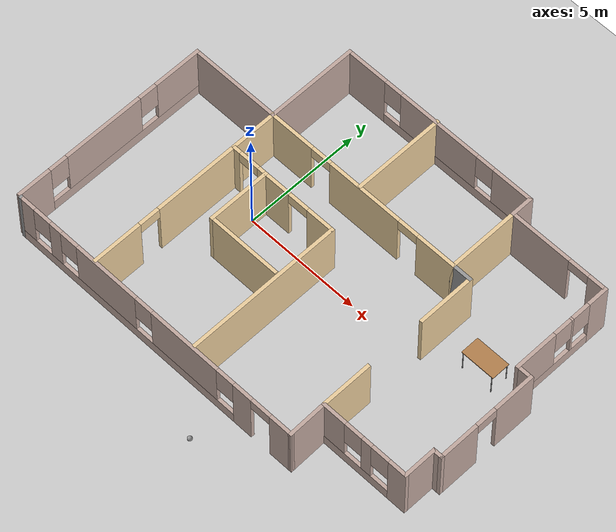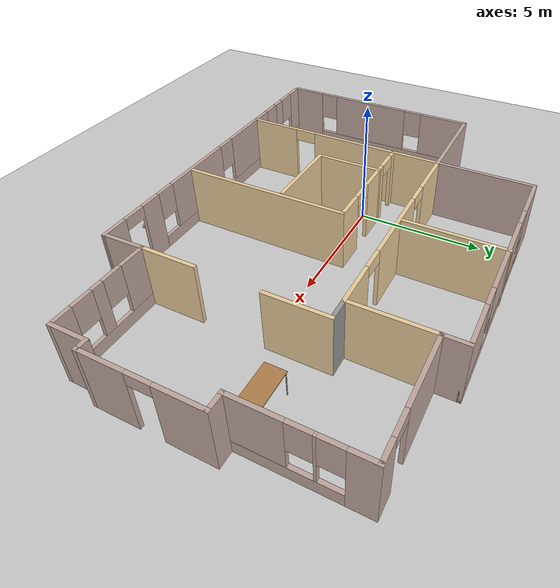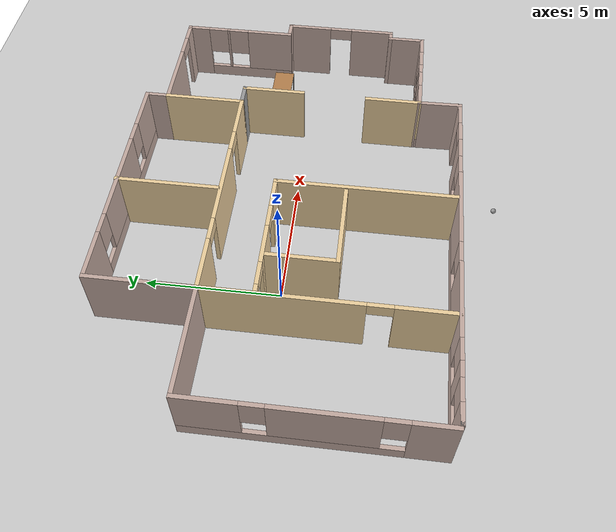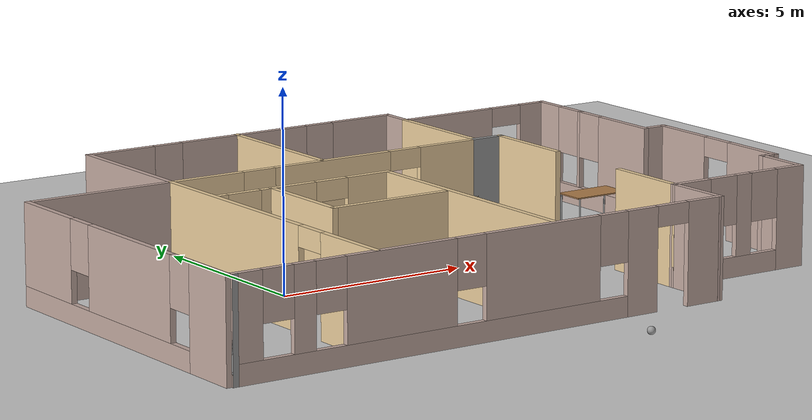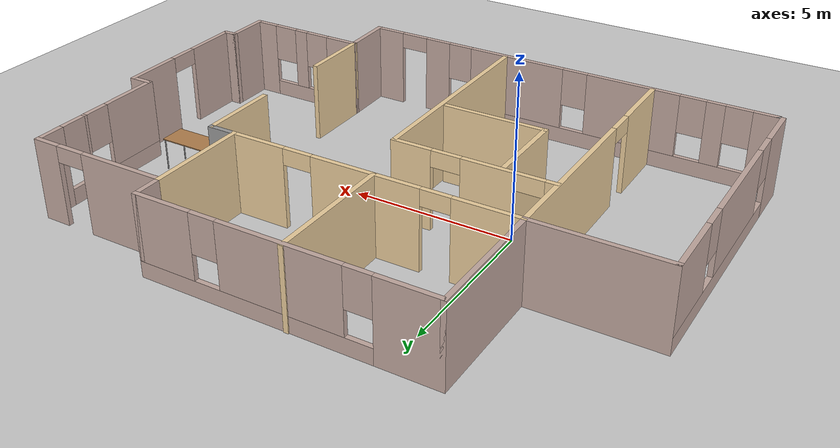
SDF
<sdf version="1.6">
 <world name="default">
  <plugin name="hello" filename="libhello.so"/>
  <light name="sun" type="directional">
   <pose>0 0 10 0 -0 0</pose>
   <diffuse>0.8 0.8 0.8 1</diffuse>
   <specular>0.2 0.2 0.2 1</specular>
   <attenuation>
    <range>1000</range>
    <constant>0.9</constant>
    <linear>0.01</linear>
    <quadratic>0.001</quadratic>
   </attenuation>
   <direction>-0.5 0.1 -0.9</direction>
  </light>
  <model name="ground_plane">
   <static>1</static>
   <link name="link">
    <collision name="collision">
     <geometry><plane><normal>0 0 1</normal><size>100 100</size></plane></geometry>
     <surface><friction><ode><mu>100</mu><mu2>50</mu2></ode></friction></surface>
    </collision>
    <visual name="visual">
     <cast_shadows>0</cast_shadows>
     <geometry><plane><normal>0 0 1</normal><size>100 100</size></plane></geometry>
     <material>
      <script><uri>file://media/materials/scripts/gazebo.material</uri><name>Gazebo/Grey</name></script>
     </material>
    </visual>
   </link>
  </model>
  <gravity>0 0 -9.8</gravity>
  <magnetic_field>6e-06 2.3e-05 -4.2e-05</magnetic_field>
  <atmosphere type="adiabatic"/>
  <physics name="default_physics" default="0" type="ode">
   <max_step_size>0.001</max_step_size>
   <real_time_factor>1</real_time_factor>
   <real_time_update_rate>1000</real_time_update_rate>
  </physics>
  <scene><ambient>0.4 0.4 0.4 1</ambient><background>0.7 0.7 0.7 1</background><shadows>1</shadows></scene>
  <spherical_coordinates>
   <surface_model>EARTH_WGS84</surface_model>
   <latitude_deg>0</latitude_deg>
   <longitude_deg>0</longitude_deg>
   <elevation>0</elevation>
   <heading_deg>0</heading_deg>
  </spherical_coordinates>
  <model name="house">
   <pose>3.45648 0.16114 0 0 -0 0</pose>
   <link name="Wall_0">
    <pose>-8.825 -1.91579 0 0 -0 1.5708</pose>
    <visual name="Wall_0_Visual_0">
     <pose>-3.62852 0 1.25 0 -0 0</pose>
     <geometry><box><size>1.49296 0.15 2.5</size></box></geometry>
     <material>
      <script><uri>file://media/materials/scripts/gazebo.material</uri><name>Gazebo/Grey</name></script>
      <ambient>0.760784 0.662745 0.627451 1</ambient>
     </material>
     <meta><layer>0</layer></meta>
    </visual>
    <collision name="Wall_0_Collision_0">
     <geometry><box><size>1.49296 0.15 2.5</size></box></geometry>
     <pose>-3.62852 0 1.25 0 -0 0</pose>
    </collision>
    <visual name="Wall_0_Visual_1">
     <pose>0.746481 0 0.25 0 -0 0</pose>
     <geometry><box><size>7.25704 0.15 0.5</size></box></geometry>
     <material>
      <script><uri>file://media/materials/scripts/gazebo.material</uri><name>Gazebo/Grey</name></script>
      <ambient>0.760784 0.662745 0.627451 1</ambient>
     </material>
     <meta><layer>0</layer></meta>
    </visual>
    <collision name="Wall_0_Collision_1">
     <geometry><box><size>7.25704 0.15 0.5</size></box></geometry>
     <pose>0.746481 0 0.25 0 -0 0</pose>
    </collision>
    <visual name="Wall_0_Visual_2">
     <pose>-0.319829 0 1.5 0 -0 0</pose>
     <geometry><box><size>3.52442 0.15 2</size></box></geometry>
     <material>
      <script><uri>file://media/materials/scripts/gazebo.material</uri><name>Gazebo/Grey</name></script>
      <ambient>0.760784 0.662745 0.627451 1</ambient>
     </material>
     <meta><layer>0</layer></meta>
    </visual>
    <collision name="Wall_0_Collision_2">
     <geometry><box><size>3.52442 0.15 2</size></box></geometry>
     <pose>-0.319829 0 1.5 0 -0 0</pose>
    </collision>
    <visual name="Wall_0_Visual_3">
     <pose>3.30869 0 1.5 0 -0 0</pose>
     <geometry><box><size>2.13262 0.15 2</size></box></geometry>
     <material>
      <script><uri>file://media/materials/scripts/gazebo.material</uri><name>Gazebo/Grey</name></script>
      <ambient>0.760784 0.662745 0.627451 1</ambient>
     </material>
     <meta><layer>0</layer></meta>
    </visual>
    <collision name="Wall_0_Collision_3">
     <geometry><box><size>2.13262 0.15 2</size></box></geometry>
     <pose>3.30869 0 1.5 0 -0 0</pose>
    </collision>
    <visual name="Wall_0_Visual_4">
     <pose>-2.48204 0 1.9 0 -0 0</pose>
     <geometry><box><size>0.8 0.15 1.2</size></box></geometry>
     <material>
      <script><uri>file://media/materials/scripts/gazebo.material</uri><name>Gazebo/Grey</name></script>
      <ambient>0.760784 0.662745 0.627451 1</ambient>
     </material>
     <meta><layer>0</layer></meta>
    </visual>
    <collision name="Wall_0_Collision_4">
     <geometry><box><size>0.8 0.15 1.2</size></box></geometry>
     <pose>-2.48204 0 1.9 0 -0 0</pose>
    </collision>
    <visual name="Wall_0_Visual_5">
     <pose>1.84238 0 1.9 0 -0 0</pose>
     <geometry><box><size>0.8 0.15 1.2</size></box></geometry>
     <material>
      <script><uri>file://media/materials/scripts/gazebo.material</uri><name>Gazebo/Grey</name></script>
      <ambient>0.760784 0.662745 0.627451 1</ambient>
     </material>
     <meta><layer>0</layer></meta>
    </visual>
    <collision name="Wall_0_Collision_5">
     <geometry><box><size>0.8 0.15 1.2</size></box></geometry>
     <pose>1.84238 0 1.9 0 -0 0</pose>
    </collision>
   </link>
   <link name="Wall_1">
    <collision name="Wall_1_Collision">
     <geometry><box><size>4 0.15 2.5</size></box></geometry>
     <pose>0 0 1.25 0 -0 0</pose>
    </collision>
    <visual name="Wall_1_Visual">
     <pose>0 0 1.25 0 -0 0</pose>
     <geometry><box><size>4 0.15 2.5</size></box></geometry>
     <material>
      <script><uri>file://media/materials/scripts/gazebo.material</uri><name>Gazebo/Grey</name></script>
      <ambient>0.760784 0.662745 0.627451 1</ambient>
     </material>
     <meta><layer>0</layer></meta>
    </visual>
    <pose>-6.9 2.38422 0 0 -0 0</pose>
   </link>
   <link name="Wall_10">
    <collision name="Wall_10_Collision">
     <geometry><box><size>1.5 0.15 2.5</size></box></geometry>
     <pose>0 0 1.25 0 -0 0</pose>
    </collision>
    <visual name="Wall_10_Visual">
     <pose>0 0 1.25 0 -0 0</pose>
     <geometry><box><size>1.5 0.15 2.5</size></box></geometry>
     <material>
      <script><uri>file://media/materials/scripts/gazebo.material</uri><name>Gazebo/Grey</name></script>
      <ambient>0.760784 0.662745 0.627451 1</ambient>
     </material>
     <meta><layer>0</layer></meta>
    </visual>
    <pose>8.475 -3.99078 0 0 0 -1.5708</pose>
   </link>
   <link name="Wall_11">
    <pose>6.55 -4.66578 0 0 -0 3.14159</pose>
    <visual name="Wall_11_Visual_0">
     <pose>-1.58472 0 1.25 0 -0 0</pose>
     <geometry><box><size>0.830568 0.15 2.5</size></box></geometry>
     <material>
      <script><uri>file://media/materials/scripts/gazebo.material</uri><name>Gazebo/Grey</name></script>
      <ambient>0.760784 0.662745 0.627451 1</ambient>
     </material>
     <meta><layer>0</layer></meta>
    </visual>
    <collision name="Wall_11_Collision_0">
     <geometry><box><size>0.830568 0.15 2.5</size></box></geometry>
     <pose>-1.58472 0 1.25 0 -0 0</pose>
    </collision>
    <visual name="Wall_11_Visual_1">
     <pose>0.415284 0 0.25 0 -0 0</pose>
     <geometry><box><size>3.16943 0.15 0.5</size></box></geometry>
     <material>
      <script><uri>file://media/materials/scripts/gazebo.material</uri><name>Gazebo/Grey</name></script>
      <ambient>0.760784 0.662745 0.627451 1</ambient>
     </material>
     <meta><layer>0</layer></meta>
    </visual>
    <collision name="Wall_11_Collision_1">
     <geometry><box><size>3.16943 0.15 0.5</size></box></geometry>
     <pose>0.415284 0 0.25 0 -0 0</pose>
    </collision>
    <visual name="Wall_11_Visual_2">
     <pose>-0.142371 0 1.5 0 -0 0</pose>
     <geometry><box><size>0.454123 0.15 2</size></box></geometry>
     <material>
      <script><uri>file://media/materials/scripts/gazebo.material</uri><name>Gazebo/Grey</name></script>
      <ambient>0.760784 0.662745 0.627451 1</ambient>
     </material>
     <meta><layer>0</layer></meta>
    </visual>
    <collision name="Wall_11_Collision_2">
     <geometry><box><size>0.454123 0.15 2</size></box></geometry>
     <pose>-0.142371 0 1.5 0 -0 0</pose>
    </collision>
    <visual name="Wall_11_Visual_3">
     <pose>1.44234 0 1.5 0 -0 0</pose>
     <geometry><box><size>1.11531 0.15 2</size></box></geometry>
     <material>
      <script><uri>file://media/materials/scripts/gazebo.material</uri><name>Gazebo/Grey</name></script>
      <ambient>0.760784 0.662745 0.627451 1</ambient>
     </material>
     <meta><layer>0</layer></meta>
    </visual>
    <collision name="Wall_11_Collision_3">
     <geometry><box><size>1.11531 0.15 2</size></box></geometry>
     <pose>1.44234 0 1.5 0 -0 0</pose>
    </collision>
    <visual name="Wall_11_Visual_4">
     <pose>-0.769432 0 1.9 0 -0 0</pose>
     <geometry><box><size>0.8 0.15 1.2</size></box></geometry>
     <material>
      <script><uri>file://media/materials/scripts/gazebo.material</uri><name>Gazebo/Grey</name></script>
      <ambient>0.760784 0.662745 0.627451 1</ambient>
     </material>
     <meta><layer>0</layer></meta>
    </visual>
    <collision name="Wall_11_Collision_4">
     <geometry><box><size>0.8 0.15 1.2</size></box></geometry>
     <pose>-0.769432 0 1.9 0 -0 0</pose>
    </collision>
    <visual name="Wall_11_Visual_5">
     <pose>0.484691 0 1.9 0 -0 0</pose>
     <geometry><box><size>0.8 0.15 1.2</size></box></geometry>
     <material>
      <script><uri>file://media/materials/scripts/gazebo.material</uri><name>Gazebo/Grey</name></script>
      <ambient>0.760784 0.662745 0.627451 1</ambient>
     </material>
     <meta><layer>0</layer></meta>
    </visual>
    <collision name="Wall_11_Collision_5">
     <geometry><box><size>0.8 0.15 1.2</size></box></geometry>
     <pose>0.484691 0 1.9 0 -0 0</pose>
    </collision>
   </link>
   <link name="Wall_12">
    <collision name="Wall_12_Collision">
     <geometry><box><size>1.75 0.15 2.5</size></box></geometry>
     <pose>0 0 1.25 0 -0 0</pose>
    </collision>
    <visual name="Wall_12_Visual">
     <pose>0 0 1.25 0 -0 0</pose>
     <geometry><box><size>1.75 0.15 2.5</size></box></geometry>
     <material>
      <script><uri>file://media/materials/scripts/gazebo.material</uri><name>Gazebo/Grey</name></script>
      <ambient>0.760784 0.662745 0.627451 1</ambient>
     </material>
     <meta><layer>0</layer></meta>
    </visual>
    <pose>4.6425 -5.46579 0 0 0 -1.54893</pose>
   </link>
   <link name="Wall_13">
    <pose>-2.015 -6.26579 0 0 -0 3.14159</pose>
    <visual name="Wall_13_Visual_0">
     <pose>-6.22578 0 1.25 0 -0 0</pose>
     <geometry><box><size>1.04844 0.15 2.5</size></box></geometry>
     <material>
      <script><uri>file://media/materials/scripts/gazebo.material</uri><name>Gazebo/Grey</name></script>
      <ambient>0.760784 0.662745 0.627451 1</ambient>
     </material>
     <meta><layer>0</layer></meta>
    </visual>
    <collision name="Wall_13_Collision_0">
     <geometry><box><size>1.04844 0.15 2.5</size></box></geometry>
     <pose>-6.22578 0 1.25 0 -0 0</pose>
    </collision>
    <visual name="Wall_13_Visual_1">
     <pose>-4.36778 0 1.25 0 -0 0</pose>
     <geometry><box><size>0.867551 0.15 2.5</size></box></geometry>
     <material>
      <script><uri>file://media/materials/scripts/gazebo.material</uri><name>Gazebo/Grey</name></script>
      <ambient>0.760784 0.662745 0.627451 1</ambient>
     </material>
     <meta><layer>0</layer></meta>
    </visual>
    <collision name="Wall_13_Collision_1">
     <geometry><box><size>0.867551 0.15 2.5</size></box></geometry>
     <pose>-4.36778 0 1.25 0 -0 0</pose>
    </collision>
    <visual name="Wall_13_Visual_2">
     <pose>1.408 0 0.25 0 -0 0</pose>
     <geometry><box><size>10.684 0.15 0.5</size></box></geometry>
     <material>
      <script><uri>file://media/materials/scripts/gazebo.material</uri><name>Gazebo/Grey</name></script>
      <ambient>0.760784 0.662745 0.627451 1</ambient>
     </material>
     <meta><layer>0</layer></meta>
    </visual>
    <collision name="Wall_13_Collision_2">
     <geometry><box><size>10.684 0.15 0.5</size></box></geometry>
     <pose>1.408 0 0.25 0 -0 0</pose>
    </collision>
    <visual name="Wall_13_Visual_3">
     <pose>-1.53271 0 1.5 0 -0 0</pose>
     <geometry><box><size>3.2026 0.15 2</size></box></geometry>
     <material>
      <script><uri>file://media/materials/scripts/gazebo.material</uri><name>Gazebo/Grey</name></script>
      <ambient>0.760784 0.662745 0.627451 1</ambient>
     </material>
     <meta><layer>0</layer></meta>
    </visual>
    <collision name="Wall_13_Collision_3">
     <geometry><box><size>3.2026 0.15 2</size></box></geometry>
     <pose>-1.53271 0 1.5 0 -0 0</pose>
    </collision>
    <visual name="Wall_13_Visual_4">
     <pose>2.33915 0 1.5 0 -0 0</pose>
     <geometry><box><size>2.94112 0.15 2</size></box></geometry>
     <material>
      <script><uri>file://media/materials/scripts/gazebo.material</uri><name>Gazebo/Grey</name></script>
      <ambient>0.760784 0.662745 0.627451 1</ambient>
     </material>
     <meta><layer>0</layer></meta>
    </visual>
    <collision name="Wall_13_Collision_4">
     <geometry><box><size>2.94112 0.15 2</size></box></geometry>
     <pose>2.33915 0 1.5 0 -0 0</pose>
    </collision>
    <visual name="Wall_13_Visual_5">
     <pose>4.89358 0 1.5 0 -0 0</pose>
     <geometry><box><size>0.567723 0.15 2</size></box></geometry>
     <material>
      <script><uri>file://media/materials/scripts/gazebo.material</uri><name>Gazebo/Grey</name></script>
      <ambient>0.760784 0.662745 0.627451 1</ambient>
     </material>
     <meta><layer>0</layer></meta>
    </visual>
    <collision name="Wall_13_Collision_5">
     <geometry><box><size>0.567723 0.15 2</size></box></geometry>
     <pose>4.89358 0 1.5 0 -0 0</pose>
    </collision>
    <visual name="Wall_13_Visual_6">
     <pose>6.36372 0 1.5 0 -0 0</pose>
     <geometry><box><size>0.772562 0.15 2</size></box></geometry>
     <material>
      <script><uri>file://media/materials/scripts/gazebo.material</uri><name>Gazebo/Grey</name></script>
      <ambient>0.760784 0.662745 0.627451 1</ambient>
     </material>
     <meta><layer>0</layer></meta>
    </visual>
    <collision name="Wall_13_Collision_6">
     <geometry><box><size>0.772562 0.15 2</size></box></geometry>
     <pose>6.36372 0 1.5 0 -0 0</pose>
    </collision>
    <visual name="Wall_13_Visual_7">
     <pose>-3.53401 0 1.9 0 -0 0</pose>
     <geometry><box><size>0.8 0.15 1.2</size></box></geometry>
     <material>
      <script><uri>file://media/materials/scripts/gazebo.material</uri><name>Gazebo/Grey</name></script>
      <ambient>0.760784 0.662745 0.627451 1</ambient>
     </material>
     <meta><layer>0</layer></meta>
    </visual>
    <collision name="Wall_13_Collision_7">
     <geometry><box><size>0.8 0.15 1.2</size></box></geometry>
     <pose>-3.53401 0 1.9 0 -0 0</pose>
    </collision>
    <visual name="Wall_13_Visual_8">
     <pose>0.468591 0 1.9 0 -0 0</pose>
     <geometry><box><size>0.8 0.15 1.2</size></box></geometry>
     <material>
      <script><uri>file://media/materials/scripts/gazebo.material</uri><name>Gazebo/Grey</name></script>
      <ambient>0.760784 0.662745 0.627451 1</ambient>
     </material>
     <meta><layer>0</layer></meta>
    </visual>
    <collision name="Wall_13_Collision_8">
     <geometry><box><size>0.8 0.15 1.2</size></box></geometry>
     <pose>0.468591 0 1.9 0 -0 0</pose>
    </collision>
    <visual name="Wall_13_Visual_9">
     <pose>4.20972 0 1.9 0 -0 0</pose>
     <geometry><box><size>0.8 0.15 1.2</size></box></geometry>
     <material>
      <script><uri>file://media/materials/scripts/gazebo.material</uri><name>Gazebo/Grey</name></script>
      <ambient>0.760784 0.662745 0.627451 1</ambient>
     </material>
     <meta><layer>0</layer></meta>
    </visual>
    <collision name="Wall_13_Collision_9">
     <geometry><box><size>0.8 0.15 1.2</size></box></geometry>
     <pose>4.20972 0 1.9 0 -0 0</pose>
    </collision>
    <visual name="Wall_13_Visual_10">
     <pose>5.57744 0 1.9 0 -0 0</pose>
     <geometry><box><size>0.8 0.15 1.2</size></box></geometry>
     <material>
      <script><uri>file://media/materials/scripts/gazebo.material</uri><name>Gazebo/Grey</name></script>
      <ambient>0.760784 0.662745 0.627451 1</ambient>
     </material>
     <meta><layer>0</layer></meta>
    </visual>
    <collision name="Wall_13_Collision_10">
     <geometry><box><size>0.8 0.15 1.2</size></box></geometry>
     <pose>5.57744 0 1.9 0 -0 0</pose>
    </collision>
    <visual name="Wall_13_Visual_11">
     <pose>-5.25156 0 2.25 0 -0 0</pose>
     <geometry><box><size>0.9 0.15 0.5</size></box></geometry>
     <material>
      <script><uri>file://media/materials/scripts/gazebo.material</uri><name>Gazebo/Grey</name></script>
      <ambient>0.760784 0.662745 0.627451 1</ambient>
     </material>
     <meta><layer>0</layer></meta>
    </visual>
    <collision name="Wall_13_Collision_11">
     <geometry><box><size>0.9 0.15 0.5</size></box></geometry>
     <pose>-5.25156 0 2.25 0 -0 0</pose>
    </collision>
   </link>
   <link name="Wall_14">
    <collision name="Wall_14_Collision">
     <geometry><box><size>0.15 0.15 2.5</size></box></geometry>
     <pose>0 0 1.25 0 -0 0</pose>
    </collision>
    <visual name="Wall_14_Visual">
     <pose>0 0 1.25 0 -0 0</pose>
     <geometry><box><size>0.15 0.15 2.5</size></box></geometry>
     <material>
      <script><uri>file://media/materials/scripts/gazebo.material</uri><name>Gazebo/Grey</name></script>
      <ambient>1 1 1 1</ambient>
     </material>
     <meta><layer>0</layer></meta>
    </visual>
    <pose>-8.69 -6.26579 0 0 -0 0</pose>
   </link>
   <link name="Wall_16">
    <pose>-4.975 -1.91579 0 0 0 -1.5708</pose>
    <visual name="Wall_16_Visual_0">
     <pose>-1.53503 0 1.25 0 -0 0</pose>
     <geometry><box><size>5.67994 0.15 2.5</size></box></geometry>
     <material>
      <script><uri>file://media/materials/scripts/gazebo.material</uri><name>Gazebo/Grey</name></script>
      <ambient>0.921569 0.807843 0.615686 1</ambient>
     </material>
     <meta><layer>0</layer></meta>
    </visual>
    <collision name="Wall_16_Collision_0">
     <geometry><box><size>5.67994 0.15 2.5</size></box></geometry>
     <pose>-1.53503 0 1.25 0 -0 0</pose>
    </collision>
    <visual name="Wall_16_Visual_1">
     <pose>3.28997 0 1.25 0 -0 0</pose>
     <geometry><box><size>2.17006 0.15 2.5</size></box></geometry>
     <material>
      <script><uri>file://media/materials/scripts/gazebo.material</uri><name>Gazebo/Grey</name></script>
      <ambient>0.921569 0.807843 0.615686 1</ambient>
     </material>
     <meta><layer>0</layer></meta>
    </visual>
    <collision name="Wall_16_Collision_1">
     <geometry><box><size>2.17006 0.15 2.5</size></box></geometry>
     <pose>3.28997 0 1.25 0 -0 0</pose>
    </collision>
    <visual name="Wall_16_Visual_2">
     <pose>1.75494 0 2.25 0 -0 0</pose>
     <geometry><box><size>0.9 0.15 0.5</size></box></geometry>
     <material>
      <script><uri>file://media/materials/scripts/gazebo.material</uri><name>Gazebo/Grey</name></script>
      <ambient>0.921569 0.807843 0.615686 1</ambient>
     </material>
     <meta><layer>0</layer></meta>
    </visual>
    <collision name="Wall_16_Collision_2">
     <geometry><box><size>0.9 0.15 0.5</size></box></geometry>
     <pose>1.75494 0 2.25 0 -0 0</pose>
    </collision>
   </link>
   <link name="Wall_18">
    <pose>-0.55 2.38422 0 0 -0 0</pose>
    <visual name="Wall_18_Visual_0">
     <pose>-3.46651 0 1.25 0 -0 0</pose>
     <geometry><box><size>2.06698 0.15 2.5</size></box></geometry>
     <material>
      <script><uri>file://media/materials/scripts/gazebo.material</uri><name>Gazebo/Grey</name></script>
      <ambient>0.921569 0.807843 0.615686 1</ambient>
     </material>
     <meta><layer>0</layer></meta>
    </visual>
    <collision name="Wall_18_Collision_0">
     <geometry><box><size>2.06698 0.15 2.5</size></box></geometry>
     <pose>-3.46651 0 1.25 0 -0 0</pose>
    </collision>
    <visual name="Wall_18_Visual_1">
     <pose>0.144147 0 1.25 0 -0 0</pose>
     <geometry><box><size>3.35433 0.15 2.5</size></box></geometry>
     <material>
      <script><uri>file://media/materials/scripts/gazebo.material</uri><name>Gazebo/Grey</name></script>
      <ambient>0.921569 0.807843 0.615686 1</ambient>
     </material>
     <meta><layer>0</layer></meta>
    </visual>
    <collision name="Wall_18_Collision_1">
     <geometry><box><size>3.35433 0.15 2.5</size></box></geometry>
     <pose>0.144147 0 1.25 0 -0 0</pose>
    </collision>
    <visual name="Wall_18_Visual_2">
     <pose>3.61066 0 1.25 0 -0 0</pose>
     <geometry><box><size>1.77869 0.15 2.5</size></box></geometry>
     <material>
      <script><uri>file://media/materials/scripts/gazebo.material</uri><name>Gazebo/Grey</name></script>
      <ambient>0.921569 0.807843 0.615686 1</ambient>
     </material>
     <meta><layer>0</layer></meta>
    </visual>
    <collision name="Wall_18_Collision_2">
     <geometry><box><size>1.77869 0.15 2.5</size></box></geometry>
     <pose>3.61066 0 1.25 0 -0 0</pose>
    </collision>
    <visual name="Wall_18_Visual_3">
     <pose>-1.98302 0 2.25 0 -0 0</pose>
     <geometry><box><size>0.9 0.15 0.5</size></box></geometry>
     <material>
      <script><uri>file://media/materials/scripts/gazebo.material</uri><name>Gazebo/Grey</name></script>
      <ambient>0.921569 0.807843 0.615686 1</ambient>
     </material>
     <meta><layer>0</layer></meta>
    </visual>
    <collision name="Wall_18_Collision_3">
     <geometry><box><size>0.9 0.15 0.5</size></box></geometry>
     <pose>-1.98302 0 2.25 0 -0 0</pose>
    </collision>
    <visual name="Wall_18_Visual_4">
     <pose>2.27131 0 2.25 0 -0 0</pose>
     <geometry><box><size>0.9 0.15 0.5</size></box></geometry>
     <material>
      <script><uri>file://media/materials/scripts/gazebo.material</uri><name>Gazebo/Grey</name></script>
      <ambient>0.921569 0.807843 0.615686 1</ambient>
     </material>
     <meta><layer>0</layer></meta>
    </visual>
    <collision name="Wall_18_Collision_4">
     <geometry><box><size>0.9 0.15 0.5</size></box></geometry>
     <pose>2.27131 0 2.25 0 -0 0</pose>
    </collision>
   </link>
   <link name="Wall_19">
    <collision name="Wall_19_Collision">
     <geometry><box><size>3.15 0.15 2.5</size></box></geometry>
     <pose>0 0 1.25 0 -0 0</pose>
    </collision>
    <visual name="Wall_19_Visual">
     <pose>0 0 1.25 0 -0 0</pose>
     <geometry><box><size>3.15 0.15 2.5</size></box></geometry>
     <material>
      <script><uri>file://media/materials/scripts/gazebo.material</uri><name>Gazebo/Grey</name></script>
      <ambient>0.921569 0.807843 0.615686 1</ambient>
     </material>
     <meta><layer>0</layer></meta>
    </visual>
    <pose>3.875 3.88422 0 0 -0 1.5708</pose>
   </link>
   <link name="Wall_2">
    <collision name="Wall_2_Collision">
     <geometry><box><size>4 0.15 2.5</size></box></geometry>
     <pose>0 0 1.25 0 -0 0</pose>
    </collision>
    <visual name="Wall_2_Visual">
     <pose>0 0 1.25 0 -0 0</pose>
     <geometry><box><size>4 0.15 2.5</size></box></geometry>
     <material>
      <script><uri>file://media/materials/scripts/gazebo.material</uri><name>Gazebo/Grey</name></script>
      <ambient>0.760784 0.662745 0.627451 1</ambient>
     </material>
     <meta><layer>0</layer></meta>
    </visual>
    <pose>-4.975 4.30922 0 0 -0 1.5708</pose>
   </link>
   <link name="Wall_21">
    <collision name="Wall_21_Collision">
     <geometry><box><size>2.25 0.15 2.5</size></box></geometry>
     <pose>0 0 1.25 0 -0 0</pose>
    </collision>
    <visual name="Wall_21_Visual">
     <pose>0 0 1.25 0 -0 0</pose>
     <geometry><box><size>2.25 0.15 2.5</size></box></geometry>
     <material>
      <script><uri>file://media/materials/scripts/gazebo.material</uri><name>Gazebo/Grey</name></script>
      <ambient>0.921569 0.807843 0.615686 1</ambient>
     </material>
     <meta><layer>0</layer></meta>
    </visual>
    <pose>4.625 -3.61578 0 0 -0 1.5708</pose>
   </link>
   <link name="Wall_23">
    <collision name="Wall_23_Collision">
     <geometry><box><size>0.939 0.15 2.5</size></box></geometry>
     <pose>0 0 1.25 0 -0 0</pose>
    </collision>
    <visual name="Wall_23_Visual">
     <pose>0 0 1.25 0 -0 0</pose>
     <geometry><box><size>0.939 0.15 2.5</size></box></geometry>
     <material>
      <script><uri>file://media/materials/scripts/gazebo.material</uri><name>Gazebo/Grey</name></script>
      <ambient>1 1 1 1</ambient>
     </material>
     <meta><layer>0</layer></meta>
    </visual>
    <pose>4.2695 2.38422 0 0 -0 0</pose>
   </link>
   <link name="Wall_24">
    <collision name="Wall_24_Collision">
     <geometry><box><size>2.5 0.15 2.5</size></box></geometry>
     <pose>0 0 1.25 0 -0 0</pose>
    </collision>
    <visual name="Wall_24_Visual">
     <pose>0 0 1.25 0 -0 0</pose>
     <geometry><box><size>2.5 0.15 2.5</size></box></geometry>
     <material>
      <script><uri>file://media/materials/scripts/gazebo.material</uri><name>Gazebo/Grey</name></script>
      <ambient>0.921569 0.807843 0.615686 1</ambient>
     </material>
     <meta><layer>0</layer></meta>
    </visual>
    <pose>4.664 1.20921 0 0 0 -1.5708</pose>
   </link>
   <link name="Wall_28">
    <pose>-2.525 0.452215 0 0 -0 0</pose>
    <visual name="Wall_28_Visual_0">
     <pose>-2.3018 0 1.25 0 -0 0</pose>
     <geometry><box><size>0.396406 0.15 2.5</size></box></geometry>
     <material>
      <script><uri>file://media/materials/scripts/gazebo.material</uri><name>Gazebo/Grey</name></script>
      <ambient>0.921569 0.807843 0.615686 1</ambient>
     </material>
     <meta><layer>0</layer></meta>
    </visual>
    <collision name="Wall_28_Collision_0">
     <geometry><box><size>0.396406 0.15 2.5</size></box></geometry>
     <pose>-2.3018 0 1.25 0 -0 0</pose>
    </collision>
    <visual name="Wall_28_Visual_1">
     <pose>-0.429985 0 1.25 0 -0 0</pose>
     <geometry><box><size>1.54722 0.15 2.5</size></box></geometry>
     <material>
      <script><uri>file://media/materials/scripts/gazebo.material</uri><name>Gazebo/Grey</name></script>
      <ambient>0.921569 0.807843 0.615686 1</ambient>
     </material>
     <meta><layer>0</layer></meta>
    </visual>
    <collision name="Wall_28_Collision_1">
     <geometry><box><size>1.54722 0.15 2.5</size></box></geometry>
     <pose>-0.429985 0 1.25 0 -0 0</pose>
    </collision>
    <visual name="Wall_28_Visual_2">
     <pose>1.87181 0 1.25 0 -0 0</pose>
     <geometry><box><size>1.25638 0.15 2.5</size></box></geometry>
     <material>
      <script><uri>file://media/materials/scripts/gazebo.material</uri><name>Gazebo/Grey</name></script>
      <ambient>0.921569 0.807843 0.615686 1</ambient>
     </material>
     <meta><layer>0</layer></meta>
    </visual>
    <collision name="Wall_28_Collision_2">
     <geometry><box><size>1.25638 0.15 2.5</size></box></geometry>
     <pose>1.87181 0 1.25 0 -0 0</pose>
    </collision>
    <visual name="Wall_28_Visual_3">
     <pose>-1.65359 0 2.25 0 -0 0</pose>
     <geometry><box><size>0.9 0.15 0.5</size></box></geometry>
     <material>
      <script><uri>file://media/materials/scripts/gazebo.material</uri><name>Gazebo/Grey</name></script>
      <ambient>0.921569 0.807843 0.615686 1</ambient>
     </material>
     <meta><layer>0</layer></meta>
    </visual>
    <collision name="Wall_28_Collision_3">
     <geometry><box><size>0.9 0.15 0.5</size></box></geometry>
     <pose>-1.65359 0 2.25 0 -0 0</pose>
    </collision>
    <visual name="Wall_28_Visual_4">
     <pose>0.793624 0 2.25 0 -0 0</pose>
     <geometry><box><size>0.9 0.15 0.5</size></box></geometry>
     <material>
      <script><uri>file://media/materials/scripts/gazebo.material</uri><name>Gazebo/Grey</name></script>
      <ambient>0.921569 0.807843 0.615686 1</ambient>
     </material>
     <meta><layer>0</layer></meta>
    </visual>
    <collision name="Wall_28_Collision_4">
     <geometry><box><size>0.9 0.15 0.5</size></box></geometry>
     <pose>0.793624 0 2.25 0 -0 0</pose>
    </collision>
   </link>
   <link name="Wall_29">
    <collision name="Wall_29_Collision">
     <geometry><box><size>6.75 0.15 2.5</size></box></geometry>
     <pose>0 0 1.25 0 -0 0</pose>
    </collision>
    <visual name="Wall_29_Visual">
     <pose>0 0 1.25 0 -0 0</pose>
     <geometry><box><size>6.75 0.15 2.5</size></box></geometry>
     <material>
      <script><uri>file://media/materials/scripts/gazebo.material</uri><name>Gazebo/Grey</name></script>
      <ambient>0.921569 0.807843 0.615686 1</ambient>
     </material>
     <meta><layer>0</layer></meta>
    </visual>
    <pose>-0.1 -2.84779 0 0 0 -1.5708</pose>
   </link>
   <link name="Wall_3">
    <pose>-0.55 6.23422 0 0 -0 0</pose>
    <visual name="Wall_3_Visual_0">
     <pose>-3.552 0 1.25 0 -0 0</pose>
     <geometry><box><size>1.89599 0.15 2.5</size></box></geometry>
     <material>
      <script><uri>file://media/materials/scripts/gazebo.material</uri><name>Gazebo/Grey</name></script>
      <ambient>0.760784 0.662745 0.627451 1</ambient>
     </material>
     <meta><layer>0</layer></meta>
    </visual>
    <collision name="Wall_3_Collision_0">
     <geometry><box><size>1.89599 0.15 2.5</size></box></geometry>
     <pose>-3.552 0 1.25 0 -0 0</pose>
    </collision>
    <visual name="Wall_3_Visual_1">
     <pose>0.947997 0 0.25 0 -0 0</pose>
     <geometry><box><size>7.10401 0.15 0.5</size></box></geometry>
     <material>
      <script><uri>file://media/materials/scripts/gazebo.material</uri><name>Gazebo/Grey</name></script>
      <ambient>0.760784 0.662745 0.627451 1</ambient>
     </material>
     <meta><layer>0</layer></meta>
    </visual>
    <collision name="Wall_3_Collision_1">
     <geometry><box><size>7.10401 0.15 0.5</size></box></geometry>
     <pose>0.947997 0 0.25 0 -0 0</pose>
    </collision>
    <visual name="Wall_3_Visual_2">
     <pose>0.041278 0 1.5 0 -0 0</pose>
     <geometry><box><size>3.69057 0.15 2</size></box></geometry>
     <material>
      <script><uri>file://media/materials/scripts/gazebo.material</uri><name>Gazebo/Grey</name></script>
      <ambient>0.760784 0.662745 0.627451 1</ambient>
     </material>
     <meta><layer>0</layer></meta>
    </visual>
    <collision name="Wall_3_Collision_2">
     <geometry><box><size>3.69057 0.15 2</size></box></geometry>
     <pose>0.041278 0 1.5 0 -0 0</pose>
    </collision>
    <visual name="Wall_3_Visual_3">
     <pose>3.59328 0 1.5 0 -0 0</pose>
     <geometry><box><size>1.81344 0.15 2</size></box></geometry>
     <material>
      <script><uri>file://media/materials/scripts/gazebo.material</uri><name>Gazebo/Grey</name></script>
      <ambient>0.760784 0.662745 0.627451 1</ambient>
     </material>
     <meta><layer>0</layer></meta>
    </visual>
    <collision name="Wall_3_Collision_3">
     <geometry><box><size>1.81344 0.15 2</size></box></geometry>
     <pose>3.59328 0 1.5 0 -0 0</pose>
    </collision>
    <visual name="Wall_3_Visual_4">
     <pose>-2.20401 0 1.9 0 -0 0</pose>
     <geometry><box><size>0.8 0.15 1.2</size></box></geometry>
     <material>
      <script><uri>file://media/materials/scripts/gazebo.material</uri><name>Gazebo/Grey</name></script>
      <ambient>0.760784 0.662745 0.627451 1</ambient>
     </material>
     <meta><layer>0</layer></meta>
    </visual>
    <collision name="Wall_3_Collision_4">
     <geometry><box><size>0.8 0.15 1.2</size></box></geometry>
     <pose>-2.20401 0 1.9 0 -0 0</pose>
    </collision>
    <visual name="Wall_3_Visual_5">
     <pose>2.28656 0 1.9 0 -0 0</pose>
     <geometry><box><size>0.8 0.15 1.2</size></box></geometry>
     <material>
      <script><uri>file://media/materials/scripts/gazebo.material</uri><name>Gazebo/Grey</name></script>
      <ambient>0.760784 0.662745 0.627451 1</ambient>
     </material>
     <meta><layer>0</layer></meta>
    </visual>
    <collision name="Wall_3_Collision_5">
     <geometry><box><size>0.8 0.15 1.2</size></box></geometry>
     <pose>2.28656 0 1.9 0 -0 0</pose>
    </collision>
   </link>
   <link name="Wall_31">
    <collision name="Wall_31_Collision">
     <geometry><box><size>2.75 0.15 2.5</size></box></geometry>
     <pose>0 0 1.25 0 -0 0</pose>
    </collision>
    <visual name="Wall_31_Visual">
     <pose>0 0 1.25 0 -0 0</pose>
     <geometry><box><size>2.75 0.15 2.5</size></box></geometry>
     <material>
      <script><uri>file://media/materials/scripts/gazebo.material</uri><name>Gazebo/Grey</name></script>
      <ambient>0.921569 0.807843 0.615686 1</ambient>
     </material>
     <meta><layer>0</layer></meta>
    </visual>
    <pose>-3.381 -0.847785 0 0 0 -1.5708</pose>
   </link>
   <link name="Wall_32">
    <collision name="Wall_32_Collision">
     <geometry><box><size>3.25 0.15 2.5</size></box></geometry>
     <pose>0 0 1.25 0 -0 0</pose>
    </collision>
    <visual name="Wall_32_Visual">
     <pose>0 0 1.25 0 -0 0</pose>
     <geometry><box><size>3.25 0.15 2.5</size></box></geometry>
     <material>
      <script><uri>file://media/materials/scripts/gazebo.material</uri><name>Gazebo/Grey</name></script>
      <ambient>0.921569 0.807843 0.615686 1</ambient>
     </material>
     <meta><layer>0</layer></meta>
    </visual>
    <pose>-1.831 -2.14778 0 0 -0 0</pose>
   </link>
   <link name="Wall_4">
    <collision name="Wall_4_Collision">
     <geometry><box><size>1 0.15 2.5</size></box></geometry>
     <pose>0 0 1.25 0 -0 0</pose>
    </collision>
    <visual name="Wall_4_Visual">
     <pose>0 0 1.25 0 -0 0</pose>
     <geometry><box><size>1 0.15 2.5</size></box></geometry>
     <material>
      <script><uri>file://media/materials/scripts/gazebo.material</uri><name>Gazebo/Grey</name></script>
      <ambient>0.760784 0.662745 0.627451 1</ambient>
     </material>
     <meta><layer>0</layer></meta>
    </visual>
    <pose>3.875 5.80922 0 0 0 -1.5708</pose>
   </link>
   <link name="Wall_41">
    <collision name="Wall_41_Collision">
     <geometry><box><size>4 0.15 2.5</size></box></geometry>
     <pose>0 0 1.25 0 -0 0</pose>
    </collision>
    <visual name="Wall_41_Visual">
     <pose>0 0 1.25 0 -0 0</pose>
     <geometry><box><size>4 0.15 2.5</size></box></geometry>
     <material>
      <script><uri>file://media/materials/scripts/gazebo.material</uri><name>Gazebo/Grey</name></script>
      <ambient>0.921569 0.807843 0.615686 1</ambient>
     </material>
     <meta><layer>0</layer></meta>
    </visual>
    <pose>-0.672 4.34222 0 0 0 -1.5708</pose>
   </link>
   <link name="Wall_5">
    <pose>6.05 5.38422 0 0 -0 0</pose>
    <visual name="Wall_5_Visual_0">
     <pose>-0.869903 0 1.25 0 -0 0</pose>
     <geometry><box><size>2.76019 0.15 2.5</size></box></geometry>
     <material>
      <script><uri>file://media/materials/scripts/gazebo.material</uri><name>Gazebo/Grey</name></script>
      <ambient>0.760784 0.662745 0.627451 1</ambient>
     </material>
     <meta><layer>0</layer></meta>
    </visual>
    <collision name="Wall_5_Collision_0">
     <geometry><box><size>2.76019 0.15 2.5</size></box></geometry>
     <pose>-0.869903 0 1.25 0 -0 0</pose>
    </collision>
    <visual name="Wall_5_Visual_1">
     <pose>1.8301 0 1.25 0 -0 0</pose>
     <geometry><box><size>0.839806 0.15 2.5</size></box></geometry>
     <material>
      <script><uri>file://media/materials/scripts/gazebo.material</uri><name>Gazebo/Grey</name></script>
      <ambient>0.760784 0.662745 0.627451 1</ambient>
     </material>
     <meta><layer>0</layer></meta>
    </visual>
    <collision name="Wall_5_Collision_1">
     <geometry><box><size>0.839806 0.15 2.5</size></box></geometry>
     <pose>1.8301 0 1.25 0 -0 0</pose>
    </collision>
    <visual name="Wall_5_Visual_2">
     <pose>0.960194 0 2.25 0 -0 0</pose>
     <geometry><box><size>0.9 0.15 0.5</size></box></geometry>
     <material>
      <script><uri>file://media/materials/scripts/gazebo.material</uri><name>Gazebo/Grey</name></script>
      <ambient>0.760784 0.662745 0.627451 1</ambient>
     </material>
     <meta><layer>0</layer></meta>
    </visual>
    <collision name="Wall_5_Collision_2">
     <geometry><box><size>0.9 0.15 0.5</size></box></geometry>
     <pose>0.960194 0 2.25 0 -0 0</pose>
    </collision>
   </link>
   <link name="Wall_6">
    <pose>8.225 3.20921 0 0 0 -1.5708</pose>
    <visual name="Wall_6_Visual_0">
     <pose>-1.7905 0 1.25 0 -0 0</pose>
     <geometry><box><size>0.919005 0.15 2.5</size></box></geometry>
     <material>
      <script><uri>file://media/materials/scripts/gazebo.material</uri><name>Gazebo/Grey</name></script>
      <ambient>0.760784 0.662745 0.627451 1</ambient>
     </material>
     <meta><layer>0</layer></meta>
    </visual>
    <collision name="Wall_6_Collision_0">
     <geometry><box><size>0.919005 0.15 2.5</size></box></geometry>
     <pose>-1.7905 0 1.25 0 -0 0</pose>
    </collision>
    <visual name="Wall_6_Visual_1">
     <pose>0.459503 0 0.25 0 -0 0</pose>
     <geometry><box><size>3.581 0.15 0.5</size></box></geometry>
     <material>
      <script><uri>file://media/materials/scripts/gazebo.material</uri><name>Gazebo/Grey</name></script>
      <ambient>0.760784 0.662745 0.627451 1</ambient>
     </material>
     <meta><layer>0</layer></meta>
    </visual>
    <collision name="Wall_6_Collision_1">
     <geometry><box><size>3.581 0.15 0.5</size></box></geometry>
     <pose>0.459503 0 0.25 0 -0 0</pose>
    </collision>
    <visual name="Wall_6_Visual_2">
     <pose>-0.485984 0 1.5 0 -0 0</pose>
     <geometry><box><size>0.090022 0.15 2</size></box></geometry>
     <material>
      <script><uri>file://media/materials/scripts/gazebo.material</uri><name>Gazebo/Grey</name></script>
      <ambient>0.760784 0.662745 0.627451 1</ambient>
     </material>
     <meta><layer>0</layer></meta>
    </visual>
    <collision name="Wall_6_Collision_2">
     <geometry><box><size>0.090022 0.15 2</size></box></geometry>
     <pose>-0.485984 0 1.5 0 -0 0</pose>
    </collision>
    <visual name="Wall_6_Visual_3">
     <pose>1.30451 0 1.5 0 -0 0</pose>
     <geometry><box><size>1.89097 0.15 2</size></box></geometry>
     <material>
      <script><uri>file://media/materials/scripts/gazebo.material</uri><name>Gazebo/Grey</name></script>
      <ambient>0.760784 0.662745 0.627451 1</ambient>
     </material>
     <meta><layer>0</layer></meta>
    </visual>
    <collision name="Wall_6_Collision_3">
     <geometry><box><size>1.89097 0.15 2</size></box></geometry>
     <pose>1.30451 0 1.5 0 -0 0</pose>
    </collision>
    <visual name="Wall_6_Visual_4">
     <pose>-0.930995 0 1.9 0 -0 0</pose>
     <geometry><box><size>0.8 0.15 1.2</size></box></geometry>
     <material>
      <script><uri>file://media/materials/scripts/gazebo.material</uri><name>Gazebo/Grey</name></script>
      <ambient>0.760784 0.662745 0.627451 1</ambient>
     </material>
     <meta><layer>0</layer></meta>
    </visual>
    <collision name="Wall_6_Collision_4">
     <geometry><box><size>0.8 0.15 1.2</size></box></geometry>
     <pose>-0.930995 0 1.9 0 -0 0</pose>
    </collision>
    <visual name="Wall_6_Visual_5">
     <pose>-0.040973 0 1.9 0 -0 0</pose>
     <geometry><box><size>0.8 0.15 1.2</size></box></geometry>
     <material>
      <script><uri>file://media/materials/scripts/gazebo.material</uri><name>Gazebo/Grey</name></script>
      <ambient>0.760784 0.662745 0.627451 1</ambient>
     </material>
     <meta><layer>0</layer></meta>
    </visual>
    <collision name="Wall_6_Collision_5">
     <geometry><box><size>0.8 0.15 1.2</size></box></geometry>
     <pose>-0.040973 0 1.9 0 -0 0</pose>
    </collision>
   </link>
   <link name="Wall_7">
    <collision name="Wall_7_Collision">
     <geometry><box><size>0.75 0.15 2.5</size></box></geometry>
     <pose>0 0 1.25 0 -0 0</pose>
    </collision>
    <visual name="Wall_7_Visual">
     <pose>0 0 1.25 0 -0 0</pose>
     <geometry><box><size>0.75 0.15 2.5</size></box></geometry>
     <material>
      <script><uri>file://media/materials/scripts/gazebo.material</uri><name>Gazebo/Grey</name></script>
      <ambient>0.760784 0.662745 0.627451 1</ambient>
     </material>
     <meta><layer>0</layer></meta>
    </visual>
    <pose>8.525 1.03422 0 0 -0 0</pose>
   </link>
   <link name="Wall_8">
    <pose>8.825 -1.14078 0 0 0 -1.5708</pose>
    <visual name="Wall_8_Visual_0">
     <pose>-1.34062 0 1.25 0 -0 0</pose>
     <geometry><box><size>1.81875 0.15 2.5</size></box></geometry>
     <material>
      <script><uri>file://media/materials/scripts/gazebo.material</uri><name>Gazebo/Grey</name></script>
      <ambient>0.760784 0.662745 0.627451 1</ambient>
     </material>
     <meta><layer>0</layer></meta>
    </visual>
    <collision name="Wall_8_Collision_0">
     <geometry><box><size>1.81875 0.15 2.5</size></box></geometry>
     <pose>-1.34062 0 1.25 0 -0 0</pose>
    </collision>
    <visual name="Wall_8_Visual_1">
     <pose>1.35938 0 1.25 0 -0 0</pose>
     <geometry><box><size>1.78125 0.15 2.5</size></box></geometry>
     <material>
      <script><uri>file://media/materials/scripts/gazebo.material</uri><name>Gazebo/Grey</name></script>
      <ambient>0.760784 0.662745 0.627451 1</ambient>
     </material>
     <meta><layer>0</layer></meta>
    </visual>
    <collision name="Wall_8_Collision_1">
     <geometry><box><size>1.78125 0.15 2.5</size></box></geometry>
     <pose>1.35938 0 1.25 0 -0 0</pose>
    </collision>
    <visual name="Wall_8_Visual_2">
     <pose>0.018753 0 2.25 0 -0 0</pose>
     <geometry><box><size>0.9 0.15 0.5</size></box></geometry>
     <material>
      <script><uri>file://media/materials/scripts/gazebo.material</uri><name>Gazebo/Grey</name></script>
      <ambient>0.760784 0.662745 0.627451 1</ambient>
     </material>
     <meta><layer>0</layer></meta>
    </visual>
    <collision name="Wall_8_Collision_2">
     <geometry><box><size>0.9 0.15 0.5</size></box></geometry>
     <pose>0.018753 0 2.25 0 -0 0</pose>
    </collision>
   </link>
   <link name="Wall_9">
    <collision name="Wall_9_Collision">
     <geometry><box><size>0.5 0.15 2.5</size></box></geometry>
     <pose>0 0 1.25 0 -0 0</pose>
    </collision>
    <visual name="Wall_9_Visual">
     <pose>0 0 1.25 0 -0 0</pose>
     <geometry><box><size>0.5 0.15 2.5</size></box></geometry>
     <material>
      <script><uri>file://media/materials/scripts/gazebo.material</uri><name>Gazebo/Grey</name></script>
      <ambient>0.760784 0.662745 0.627451 1</ambient>
     </material>
     <meta><layer>0</layer></meta>
    </visual>
    <pose>8.65 -3.31578 0 0 -0 3.14159</pose>
   </link>
   <static>1</static>
  </model>
  <model name="table">
   <static>1</static>
   <link name="link">
    <collision name="surface">
     <pose>0 0 1 0 -0 0</pose>
     <geometry><box><size>1.5 0.8 0.03</size></box></geometry>
     <surface><friction><ode><mu>0.6</mu><mu2>0.6</mu2></ode></friction></surface>
    </collision>
    <visual name="visual1">
     <pose>0 0 1 0 -0 0</pose>
     <geometry><box><size>1.5 0.8 0.03</size></box></geometry>
     <material>
      <script><uri>file://media/materials/scripts/gazebo.material</uri><name>Gazebo/Wood</name></script>
     </material>
    </visual>
    <collision name="front_left_leg">
     <pose>0.68 0.38 0.5 0 -0 0</pose>
     <geometry><cylinder><radius>0.02</radius><length>1</length></cylinder></geometry>
    </collision>
    <visual name="front_left_leg">
     <pose>0.68 0.38 0.5 0 -0 0</pose>
     <geometry><cylinder><radius>0.02</radius><length>1</length></cylinder></geometry>
     <material>
      <script><uri>file://media/materials/scripts/gazebo.material</uri><name>Gazebo/Grey</name></script>
     </material>
    </visual>
    <collision name="front_right_leg">
     <pose>0.68 -0.38 0.5 0 -0 0</pose>
     <geometry><cylinder><radius>0.02</radius><length>1</length></cylinder></geometry>
    </collision>
    <visual name="front_right_leg">
     <pose>0.68 -0.38 0.5 0 -0 0</pose>
     <geometry><cylinder><radius>0.02</radius><length>1</length></cylinder></geometry>
     <material>
      <script><uri>file://media/materials/scripts/gazebo.material</uri><name>Gazebo/Grey</name></script>
     </material>
    </visual>
    <collision name="back_right_leg">
     <pose>-0.68 -0.38 0.5 0 -0 0</pose>
     <geometry><cylinder><radius>0.02</radius><length>1</length></cylinder></geometry>
    </collision>
    <visual name="back_right_leg">
     <pose>-0.68 -0.38 0.5 0 -0 0</pose>
     <geometry><cylinder><radius>0.02</radius><length>1</length></cylinder></geometry>
     <material>
      <script><uri>file://media/materials/scripts/gazebo.material</uri><name>Gazebo/Grey</name></script>
     </material>
    </visual>
    <collision name="back_left_leg">
     <pose>-0.68 0.38 0.5 0 -0 0</pose>
     <geometry><cylinder><radius>0.02</radius><length>1</length></cylinder></geometry>
    </collision>
    <visual name="back_left_leg">
     <pose>-0.68 0.38 0.5 0 -0 0</pose>
     <geometry><cylinder><radius>0.02</radius><length>1</length></cylinder></geometry>
     <material>
      <script><uri>file://media/materials/scripts/gazebo.material</uri><name>Gazebo/Grey</name></script>
     </material>
    </visual>
   </link>
   <pose>10.1129 1.31113 0 0 -0 0</pose>
  </model>
  <model name="my_ball">
   <link name="link_0">
    <inertial>
     <mass>0.0082674</mass>
     <inertia>
      <ixx>3.38e-05</ixx>
      <ixy>0</ixy>
      <ixz>0</ixz>
      <iyy>3.38e-05</iyy>
      <iyz>0</iyz>
      <izz>3.38e-05</izz>
     </inertia>
    </inertial>
    <visual name="visual">
     <geometry><sphere><radius>0.1</radius></sphere></geometry>
     <material>
      <lighting>1</lighting>
      <script><uri>file://media/materials/scripts/gazebo.material</uri><name>Gazebo/Grey</name></script>
      <ambient>1 1 1 1</ambient>
      <diffuse>1 1 1 1</diffuse>
      <specular>1 1 1 1</specular>
      <emissive>1 1 1 1</emissive>
      <shader type="vertex"><normal_map>__default__</normal_map></shader>
     </material>
    </visual>
    <collision name="collision">
     <geometry><sphere><radius>0.1</radius></sphere></geometry>
     <surface>
      <friction>
       <ode><mu>1</mu><mu2>1</mu2><fdir1>0 0 0</fdir1><slip1>0</slip1><slip2>0</slip2></ode>
       <torsional>
        <coefficient>1</coefficient>
        <patch_radius>0</patch_radius>
        <surface_radius>0</surface_radius>
        <use_patch_radius>1</use_patch_radius>
        <ode><slip>0</slip></ode>
       </torsional>
      </friction>
      <bounce><restitution_coefficient>0</restitution_coefficient><threshold>1e+06</threshold></bounce>
      <contact>
       <collide_without_contact>0</collide_without_contact>
       <collide_without_contact_bitmask>1</collide_without_contact_bitmask>
       <collide_bitmask>1</collide_bitmask>
       <ode>
        <soft_cfm>0</soft_cfm>
        <soft_erp>0.2</soft_erp>
        <kp>1e+13</kp>
        <kd>1</kd>
        <max_vel>0.01</max_vel>
        <min_depth>0</min_depth>
       </ode>
       <bullet>
        <split_impulse>1</split_impulse>
        <split_impulse_penetration_threshold>-0.01</split_impulse_penetration_threshold>
        <soft_cfm>0</soft_cfm>
        <soft_erp>0.2</soft_erp>
        <kp>1e+13</kp>
        <kd>1</kd>
       </bullet>
      </contact>
     </surface>
    </collision>
   </link>
   <static>0</static>
   <pose>4.83422 -7.74184 0.1 0 -0 0</pose>
  </model>
  <audio><device>default</device></audio>
 </world>
</sdf>
